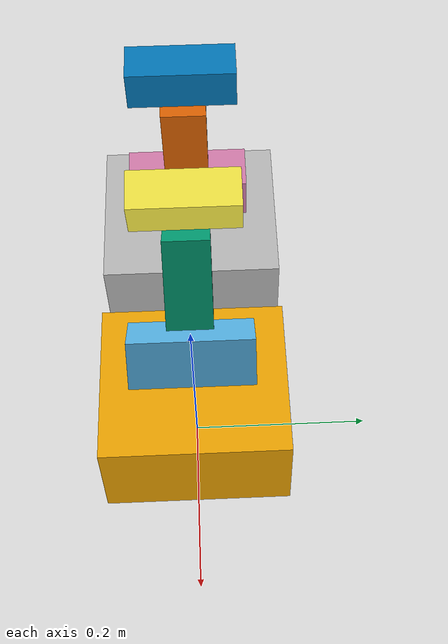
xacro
<?xml version="1.0" ?>
<!-- |    This document was autogenerated by xacro from /home/buivn/bui_ws/src/pcd_filter/worm_robot_description/urdf/worm_robot_detail.xacro | -->
<!-- |    EDITING THIS FILE BY HAND IS NOT RECOMMENDED                                 | -->
<!-- |    This document was autogenerated by xacro from /home/buivn/bui_ws/src/pcd_filter/worm_robot_description/urdf/worm_robot_detail1.xacro | -->
<!-- |    EDITING THIS FILE BY HAND IS NOT RECOMMENDED                                 | -->
<robot name="wormRobot" xmlns:xacro="http://www.ros.org/wiki/xacro">
    <link name="base_link">
        <visual>
            <origin rpy="0 0 0" xyz="0 0 0.056" />
            <geometry>
                <box size="0.19 0.21 0.112" />
            </geometry>
        </visual>
    </link>
    <joint name="base_link__link_01" type="revolute">
        <axis xyz="0 1 0" />
        <limit effort="1000.0" lower="-1.05" upper="1.05" velocity="0.5" />
        <origin rpy="0 -0.5338 0" xyz="0 0 0.163" />
        <parent link="base_link" />
        <child link="link_01" />
    </joint>
    <link name="link_01">
        <visual>
            <origin rpy="0 0 0" xyz="0 0 0" />
            <geometry>
                <box size="0.054 0.1375 0.054" />
            </geometry>
        </visual>
    </link>
    <joint name="link_01__link_02" type="revolute">
        <axis xyz="0 0 1" />
        <limit effort="1000.0" lower="-3.0" upper="3.0" velocity="0.5" />
        <origin rpy="0 0 0" xyz="0 0 0.089" />
        <parent link="link_01" />
        <child link="link_02" />
    </joint>
    <link name="link_02">
        <visual>
            <origin rpy="0 0 0" xyz="0 0 0" />
            <geometry>
                <box size="0.05 0.05 0.099" />
            </geometry>
        </visual>
    </link>
    <joint name="link_02__link_03" type="revolute">
        <axis xyz="0 1 0" />
        <limit effort="1000.0" lower="-1.57" upper="1.2" velocity="0.5" />
        <origin rpy="0 -0.8478 0" xyz="0 0 0.085" />
        <parent link="link_02" />
        <child link="link_03" />
    </joint>
    <link name="link_03">
        <visual>
            <origin rpy="0 0 0" xyz="0 0 0" />
            <geometry>
                <box size="0.045 0.1175 0.045" />
            </geometry>
        </visual>
    </link>
    <joint name="link_03__link_04" type="revolute">
        <axis xyz="0 1 0" />
        <limit effort="1000.0" lower="-1.5" upper="0.87" velocity="0.5" />
        <origin rpy="0 -1.7333 0" xyz="0 0 0.15212" />
        <parent link="link_03" />
        <child link="link_04" />
    </joint>
    <link name="link_04">
        <visual>
            <origin rpy="0 0 0" xyz="0 0 0" />
            <geometry>
                <box size="0.045 0.1175 0.045" />
            </geometry>
        </visual>
    </link>
    <joint name="link_04__link_05" type="revolute">
        <axis xyz="0 0 1" />
        <limit effort="1000.0" lower="-3.0" upper="3.0" velocity="0.5" />
        <origin rpy="0 0 0" xyz="0 0 0.085" />
        <parent link="link_04" />
        <child link="link_05" />
    </joint>
    <link name="link_05">
        <visual>
            <origin rpy="0 0 0" xyz="0 0 0" />
            <geometry>
                <box size="0.05 0.05 0.099" />
            </geometry>
        </visual>
    </link>
    <joint name="link_05__link_06" type="revolute">
        <axis xyz="0 1 0" />
        <limit effort="1000.0" lower="-1.05" upper="1.05" velocity="0.5" />
        <origin rpy="0 0 0" xyz="0 0 0.089" />
        <parent link="link_05" />
        <child link="link_06" />
    </joint>
    <link name="link_06">
        <visual>
            <origin rpy="0 0 0" xyz="0 0 0" />
            <geometry>
                <box size="0.054 0.1375 0.054" />
            </geometry>
        </visual>
    </link>
    <joint name="link_06__end_effector" type="fixed">
        <origin rpy="0 0 0" xyz="0 0 0.163" />
        <parent link="link_06" />
        <child link="end_effector" />
    </joint>
    <link name="end_effector">
        <visual>
            <origin rpy="0 0 0" xyz="0 0 -0.056" />
            <geometry>
                <box size="0.19 0.21 0.112" />
            </geometry>
        </visual>
    </link>

<transmission name="trans_base_link__link_01">
        <type>transmission_interface/SimpleTransmission</type>
        <joint name="base_link__link_01">
            <hardwareInterface>hardware_interface/EffortJointInterface</hardwareInterface>
        </joint>
        <actuator name="base_link__link_01_motor">
            <hardwareInterface>hardware_interface/EffortJointInterface</hardwareInterface>
            <mechanicalReduction>1</mechanicalReduction>
        </actuator>
    </transmission>
    <transmission name="trans_link_01__link_02">
        <type>transmission_interface/SimpleTransmission</type>
        <joint name="link_01__link_02">
            <hardwareInterface>hardware_interface/EffortJointInterface</hardwareInterface>
        </joint>
        <actuator name="link_01__link_02_motor">
            <hardwareInterface>hardware_interface/EffortJointInterface</hardwareInterface>
            <mechanicalReduction>1</mechanicalReduction>
        </actuator>
    </transmission>
    <transmission name="trans_link_02__link_03">
        <type>transmission_interface/SimpleTransmission</type>
        <joint name="link_02__link_03">
            <hardwareInterface>hardware_interface/EffortJointInterface</hardwareInterface>
        </joint>
        <actuator name="link_02__link_03_motor">
            <hardwareInterface>hardware_interface/EffortJointInterface</hardwareInterface>
            <mechanicalReduction>1</mechanicalReduction>
        </actuator>
    </transmission>
    <transmission name="trans_link_03__link_04">
        <type>transmission_interface/SimpleTransmission</type>
        <joint name="link_03__link_04">
            <hardwareInterface>hardware_interface/EffortJointInterface</hardwareInterface>
        </joint>
        <actuator name="link_03__link_04_motor">
            <hardwareInterface>hardware_interface/EffortJointInterface</hardwareInterface>
            <mechanicalReduction>1</mechanicalReduction>
        </actuator>
    </transmission>
    <transmission name="trans_link_04__link_05">
        <type>transmission_interface/SimpleTransmission</type>
        <joint name="link_04__link_05">
            <hardwareInterface>hardware_interface/EffortJointInterface</hardwareInterface>
        </joint>
        <actuator name="link_04__link_05_motor">
            <hardwareInterface>hardware_interface/EffortJointInterface</hardwareInterface>
            <mechanicalReduction>1</mechanicalReduction>
        </actuator>
    </transmission>
    <transmission name="trans_link_05__link_06">
        <type>transmission_interface/SimpleTransmission</type>
        <joint name="link_05__link_06">
            <hardwareInterface>hardware_interface/EffortJointInterface</hardwareInterface>
        </joint>
        <actuator name="link_05__link_06_motor">
            <hardwareInterface>hardware_interface/EffortJointInterface</hardwareInterface>
            <mechanicalReduction>1</mechanicalReduction>
        </actuator>
    </transmission>
    <gazebo>
        <plugin filename="libgazebo_ros_control.so" name="gazebo_ros_control">
            <robotNamespace>/</robotNamespace>
        </plugin>
    </gazebo>
    <transmission name="trans_base_link__link_01">
        <type>transmission_interface/SimpleTransmission</type>
        <joint name="base_link__link_01">
            <hardwareInterface>hardware_interface/EffortJointInterface</hardwareInterface>
        </joint>
        <actuator name="base_link__link_01_motor">
            <hardwareInterface>hardware_interface/EffortJointInterface</hardwareInterface>
            <mechanicalReduction>1</mechanicalReduction>
        </actuator>
    </transmission>
    <transmission name="trans_link_01__link_02">
        <type>transmission_interface/SimpleTransmission</type>
        <joint name="link_01__link_02">
            <hardwareInterface>hardware_interface/EffortJointInterface</hardwareInterface>
        </joint>
        <actuator name="link_01__link_02_motor">
            <hardwareInterface>hardware_interface/EffortJointInterface</hardwareInterface>
            <mechanicalReduction>1</mechanicalReduction>
        </actuator>
    </transmission>
    <transmission name="trans_link_02__link_03">
        <type>transmission_interface/SimpleTransmission</type>
        <joint name="link_02__link_03">
            <hardwareInterface>hardware_interface/EffortJointInterface</hardwareInterface>
        </joint>
        <actuator name="link_02__link_03_motor">
            <hardwareInterface>hardware_interface/EffortJointInterface</hardwareInterface>
            <mechanicalReduction>1</mechanicalReduction>
        </actuator>
    </transmission>
    <transmission name="trans_link_03__link_04">
        <type>transmission_interface/SimpleTransmission</type>
        <joint name="link_03__link_04">
            <hardwareInterface>hardware_interface/EffortJointInterface</hardwareInterface>
        </joint>
        <actuator name="link_03__link_04_motor">
            <hardwareInterface>hardware_interface/EffortJointInterface</hardwareInterface>
            <mechanicalReduction>1</mechanicalReduction>
        </actuator>
    </transmission>
    <transmission name="trans_link_04__link_05">
        <type>transmission_interface/SimpleTransmission</type>
        <joint name="link_04__link_05">
            <hardwareInterface>hardware_interface/EffortJointInterface</hardwareInterface>
        </joint>
        <actuator name="link_04__link_05_motor">
            <hardwareInterface>hardware_interface/EffortJointInterface</hardwareInterface>
            <mechanicalReduction>1</mechanicalReduction>
        </actuator>
    </transmission>
    <transmission name="trans_link_05__link_06">
        <type>transmission_interface/SimpleTransmission</type>
        <joint name="link_05__link_06">
            <hardwareInterface>hardware_interface/EffortJointInterface</hardwareInterface>
        </joint>
        <actuator name="link_05__link_06_motor">
            <hardwareInterface>hardware_interface/EffortJointInterface</hardwareInterface>
            <mechanicalReduction>1</mechanicalReduction>
        </actuator>
    </transmission>
    <gazebo>
        <plugin name="gazebo_ros_control" filename="libgazebo_ros_control.so">
            <robotNamespace>/</robotNamespace>
        </plugin>
    </gazebo>
</robot>
